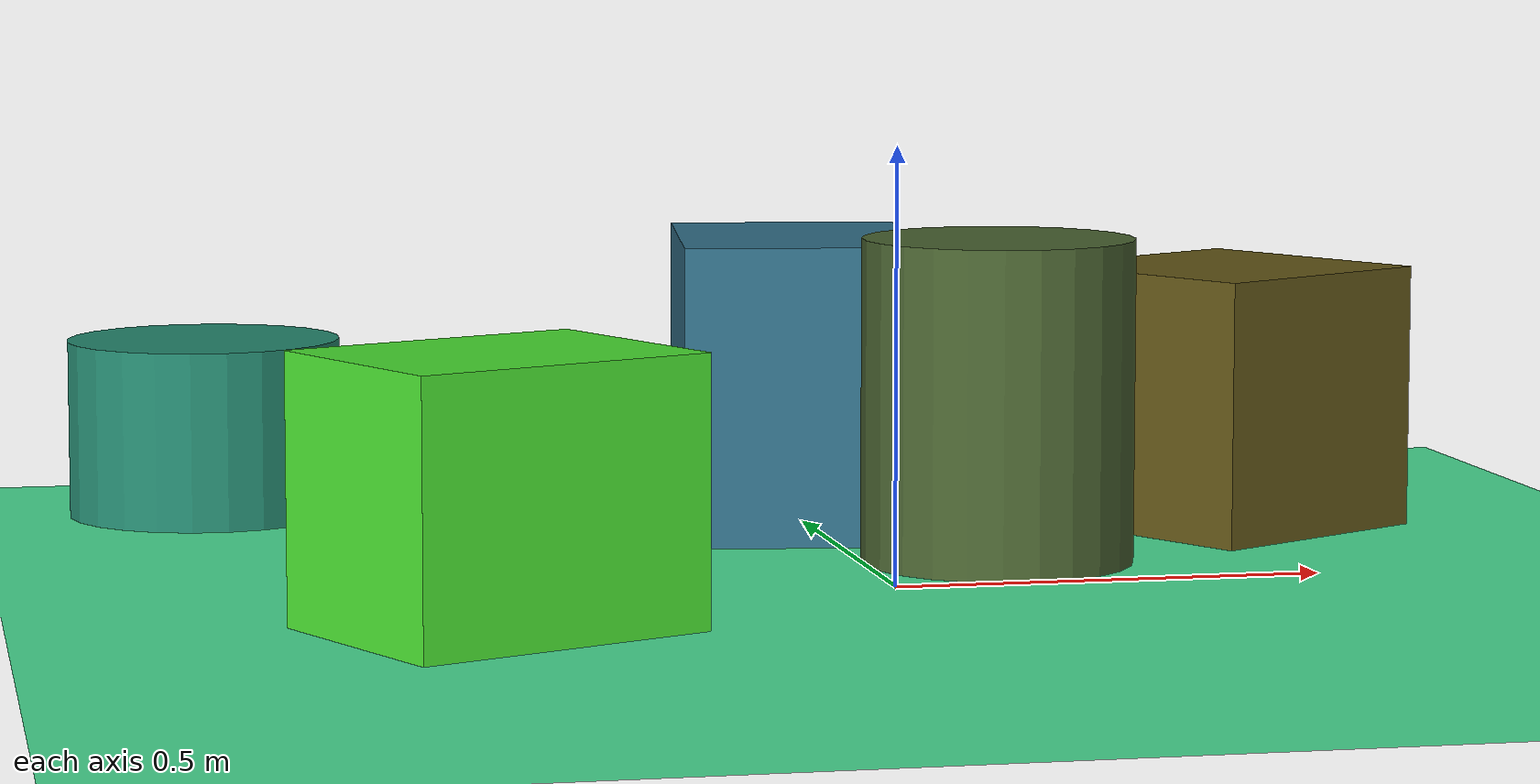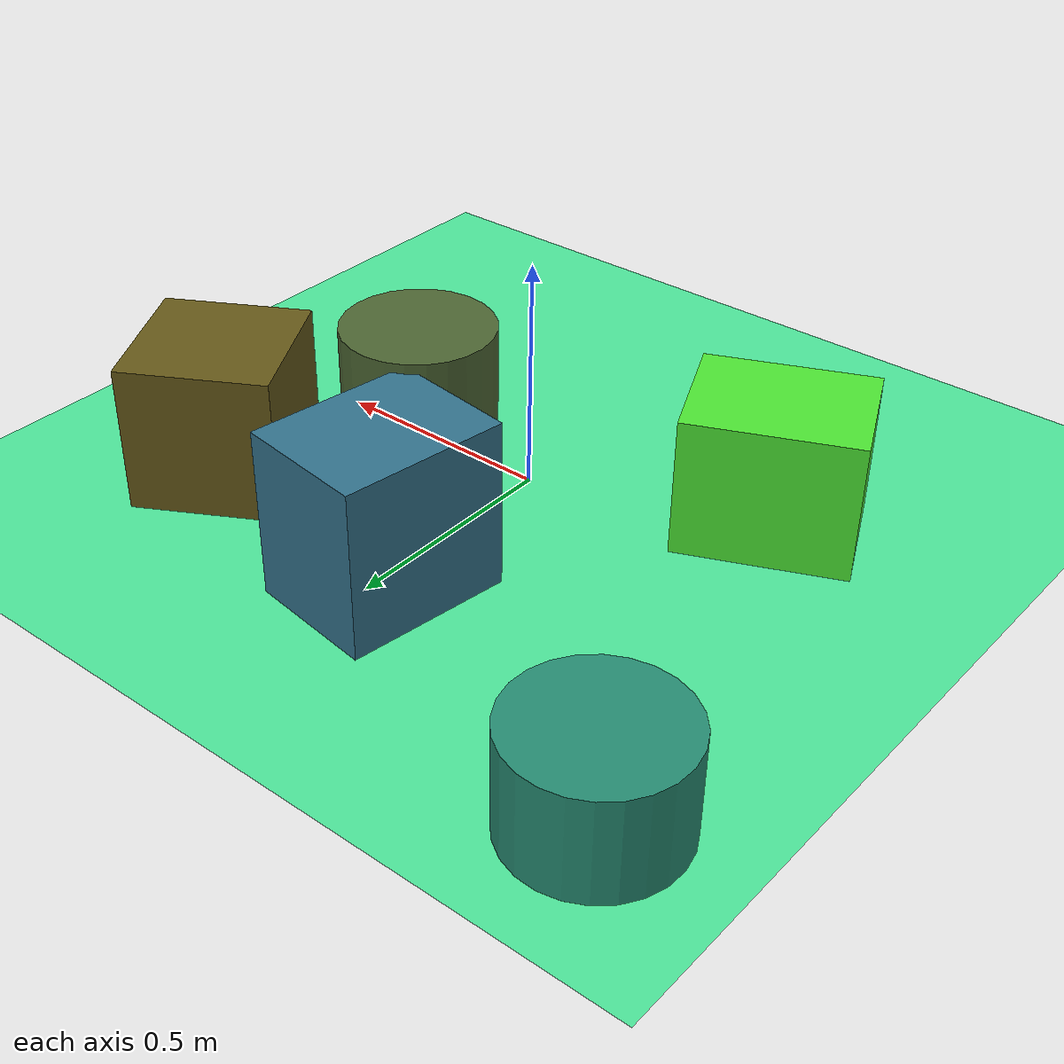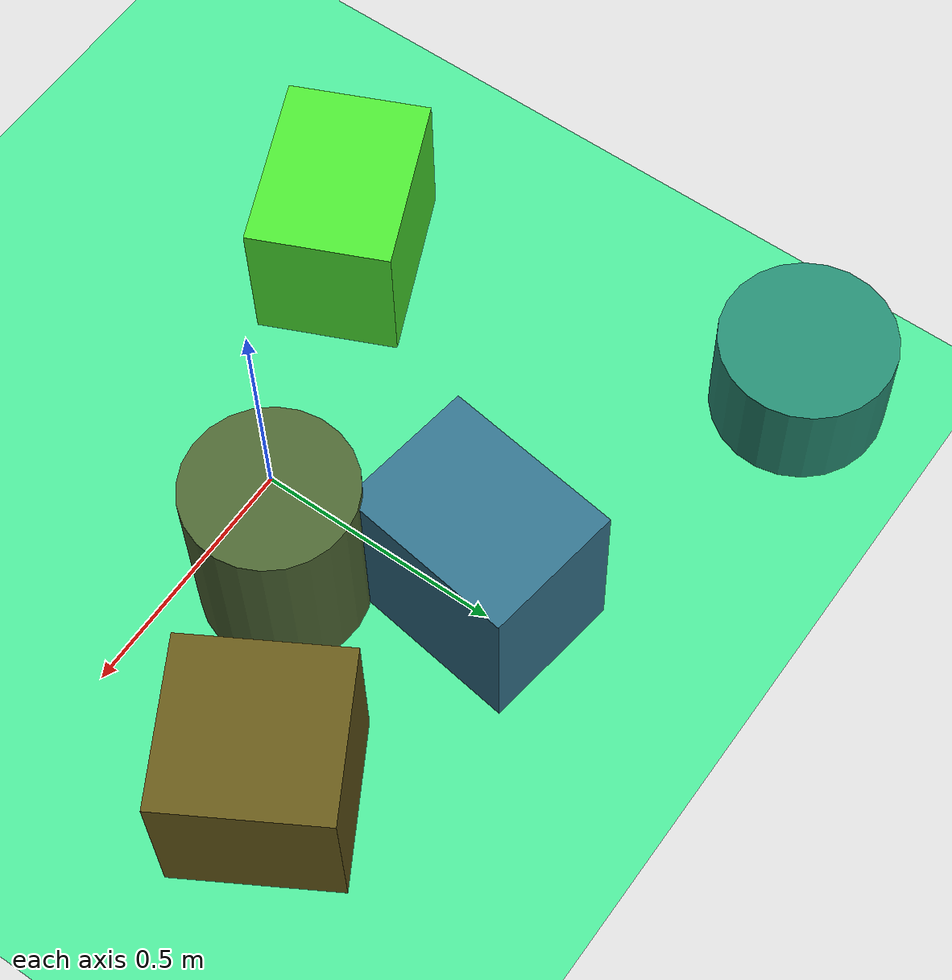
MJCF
<mujoco>
   <asset>
<texture type="skybox" builtin="gradient" rgb1="0.2 0.8 0.6" rgb2="0.1 0.6 0.1" width="256" height="256"/>
<texture name="checker_0" builtin="checker" rgb1="0.7 0.5 0.1" rgb2="0.1 0.2 0.1" width="200" height="200"/>
<texture name="flat_1" builtin="flat" rgb1="0.3 0.9 0.2" rgb2="0.3 0.9 0.2"  width="200" height="200"/>
<texture name="gradient_2" builtin="gradient" rgb1="0.1 0.6 0.0" rgb2="0.2 0.5 0.9" width="200" height="200"/>
<texture name="flat_3" builtin="flat" rgb1="0.3 0.4 0.2" rgb2="0.3 0.4 0.2"  width="200" height="200"/>
<texture name="gradient_4" builtin="gradient" rgb1="0.0 0.3 0.8" rgb2="0.4 0.6 0.3" width="200" height="200"/><material name="checker_0_mat" reflectance="0" texrepeat="7 7" texture="checker_0" texuniform="false" />
<material name="flat_1_mat" reflectance="0" texture="flat_1" texuniform="true"/>
<material name="gradient_2_mat" reflectance="0" texture="gradient_2" texuniform="true"/>
<material name="flat_3_mat" reflectance="0" texture="flat_3" texuniform="true"/>
<material name="gradient_4_mat" reflectance="0" texture="gradient_4" texuniform="true"/>
   </asset>

   <worldbody>
      <light diffuse=".9 .9 .9" pos="0 0 3" dir="0 0 -1"/>
     <geom type="plane" size="1 1 0.1" rgba="0.3 0.9 0.6 1"/>
<geom type="box" pos="0.51 0.39 0.16" size="0.16 0.16 0.16" material="checker_0_mat" euler="0 0 30" />
<geom type="box" pos="-0.48 -0.18 0.15" size="0.18 0.14 0.15" material="flat_1_mat" euler="0 0 24" />
<geom type="cylinder" pos="-0.72 0.72 0.11" size="0.17 0.11 0.11" material="gradient_2_mat" euler="0 0 50" />
<geom type="cylinder" pos="0.16 0.16 0.19" size="0.16 0.19 0.19" material="flat_3_mat" euler="0 0 18" />
<geom type="box" pos="-0.02 0.47 0.18" size="0.18 0.14 0.18" material="gradient_4_mat" euler="0 0 82" /><camera euler="60 0 180" fovy="60" name="camera1" pos="-0.2 -1.5 1"></camera>   </worldbody>
</mujoco>
